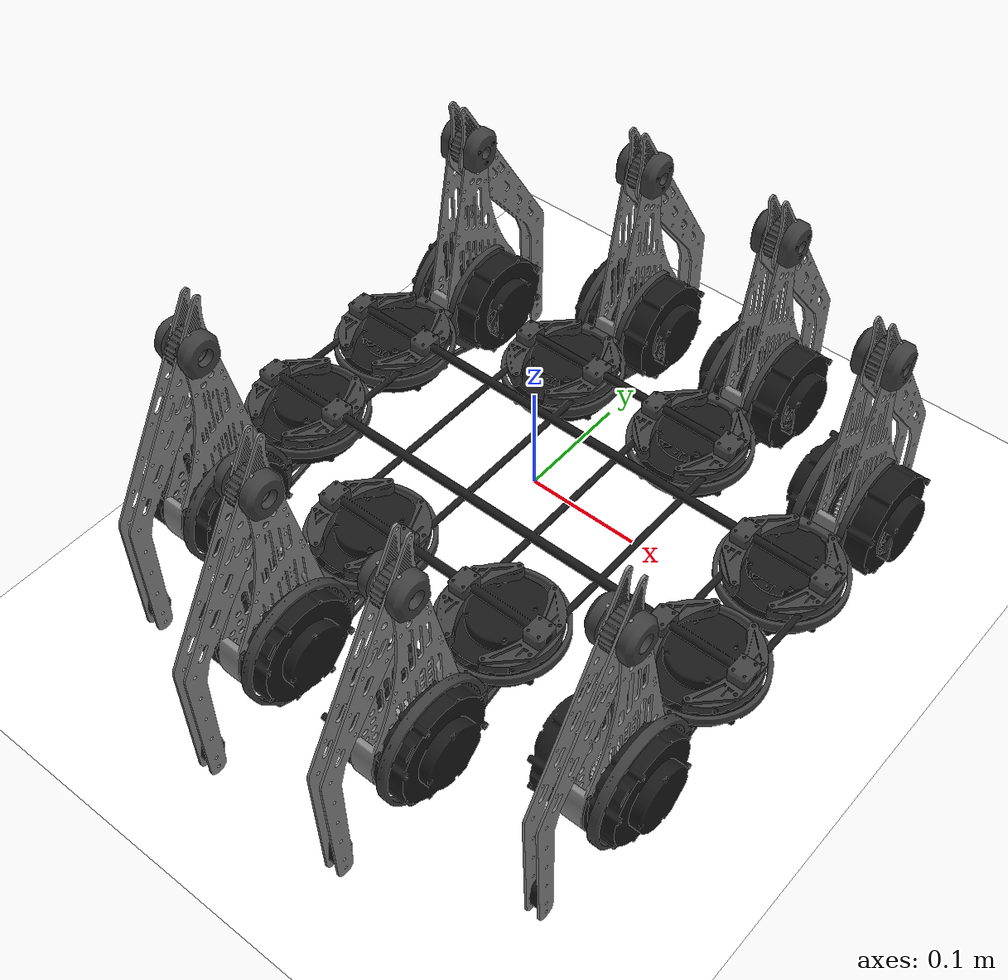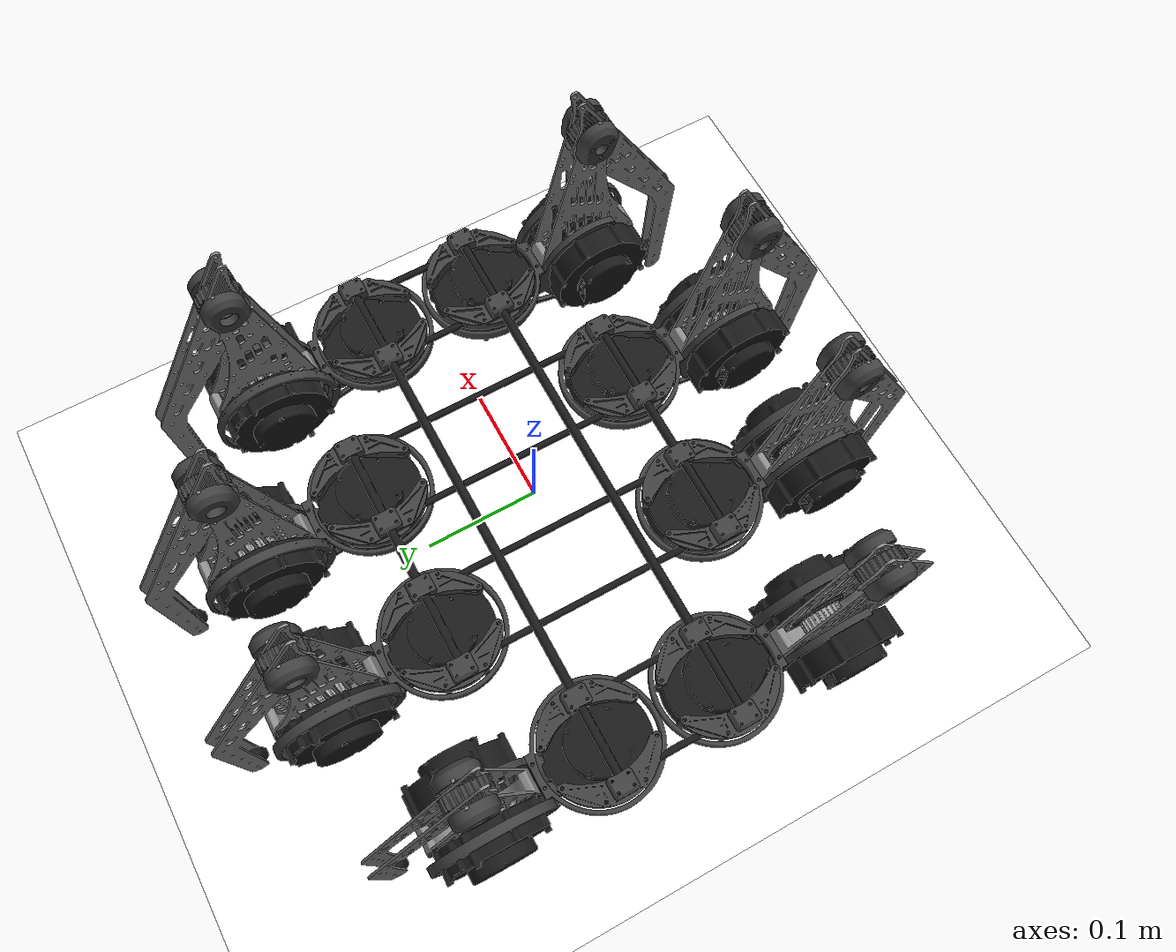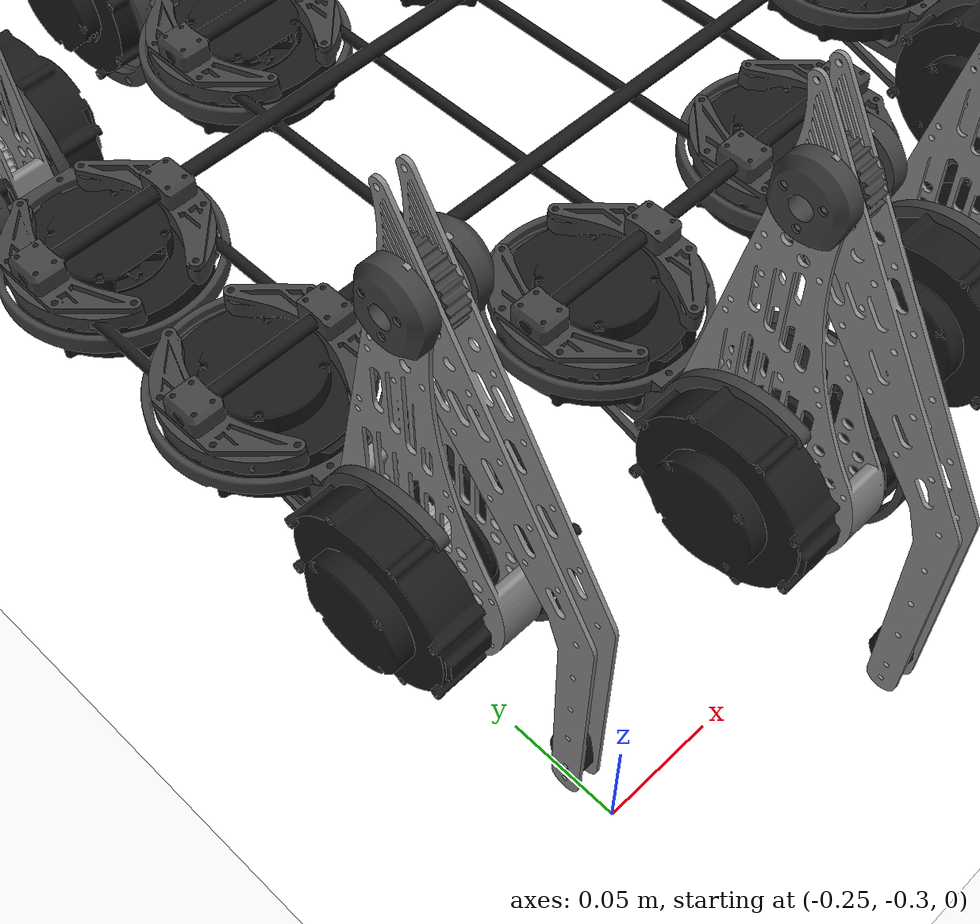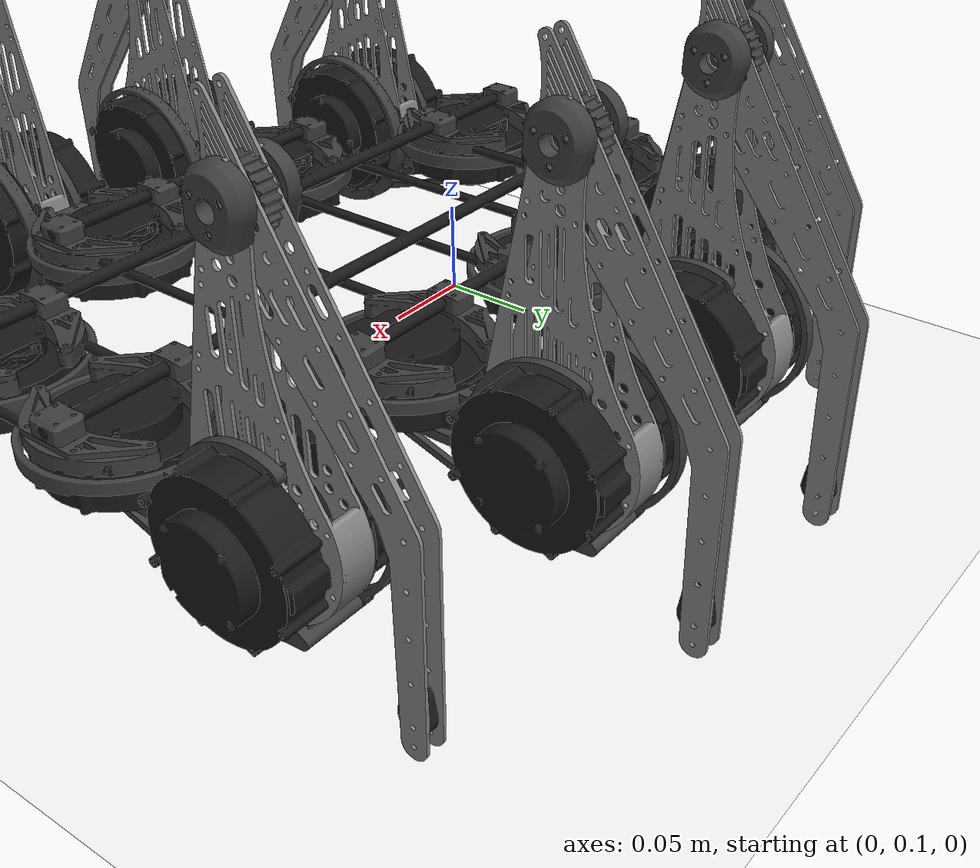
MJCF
<!-- Puts the spider bot model in an environment -->
<mujoco model="SpiderEnv">
  <compiler angle="radian" />
  <asset>
    <texture type="2d" name="groundplane" builtin="checker" mark="edge" rgb1="0.2 0.3 0.4" rgb2="0.1 0.2 0.3" markrgb="0.8 0.8 0.8" width="300" height="300" />
    <material name="groundplane" texture="groundplane" texuniform="true" texrepeat="5 5" reflectance="0.2" />
  </asset>
  <worldbody>
    <geom name="floor" size="2 2 0.1" type="plane" contype="1" conaffinity="1" rgba="1 1 1 1" material="groundplane" pos="0 0 -0.118" />
    <light directional="true" pos="-0.5 0.5 3" dir="0 0 -1" />
  </worldbody>
  <include file="./SpiderBot.xml" />
</mujoco>

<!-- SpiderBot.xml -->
<!-- Wraps the model exported by Fusion360 (v2/SpiderBot.xml) with actuator definitions -->
<mujoco model="SpiderBot">
  <compiler angle="radian" />
  <default>
    <motor gear="1" forcelimited="true" forcerange="-22.0 22.0" />
    <joint limited="true" actuatorfrclimited="true" actuatorfrcrange="-22.0 22.0" />
  </default>
  <worldbody>
  </worldbody>
  <include file="v2/SpiderBot.xml" />
  <actuator>
    <!-- Right leg joints-->
    <motor name="R1_Hip" joint="R1_Hip" />
    <motor name="R1_Femur" joint="R1_Femur" />
    <motor name="R1_Knee" joint="R1_Knee" />
    <motor name="R2_Hip" joint="R2_Hip" />
    <motor name="R2_Femur" joint="R2_Femur" />
    <motor name="R2_Knee" joint="R2_Knee" />
    <motor name="R3_Hip" joint="R3_Hip" />
    <motor name="R3_Femur" joint="R3_Femur" />
    <motor name="R3_Knee" joint="R3_Knee" />
    <motor name="R4_Hip" joint="R4_Hip" />
    <motor name="R4_Femur" joint="R4_Femur" />
    <motor name="R4_Knee" joint="R4_Knee" />

    <!-- Left leg joints -->
    <motor name="L1_Hip" joint="L1_Hip" />
    <motor name="L1_Femur" joint="L1_Femur" />
    <motor name="L1_Knee" joint="L1_Knee" />
    <motor name="L2_Hip" joint="L2_Hip" />
    <motor name="L2_Femur" joint="L2_Femur" />
    <motor name="L2_Knee" joint="L2_Knee" />
    <motor name="L3_Hip" joint="L3_Hip" />
    <motor name="L3_Femur" joint="L3_Femur" />
    <motor name="L3_Knee" joint="L3_Knee" />
    <motor name="L4_Hip" joint="L4_Hip" />
    <motor name="L4_Femur" joint="L4_Femur" />
    <motor name="L4_Knee" joint="L4_Knee" />
  </actuator>
</mujoco>
